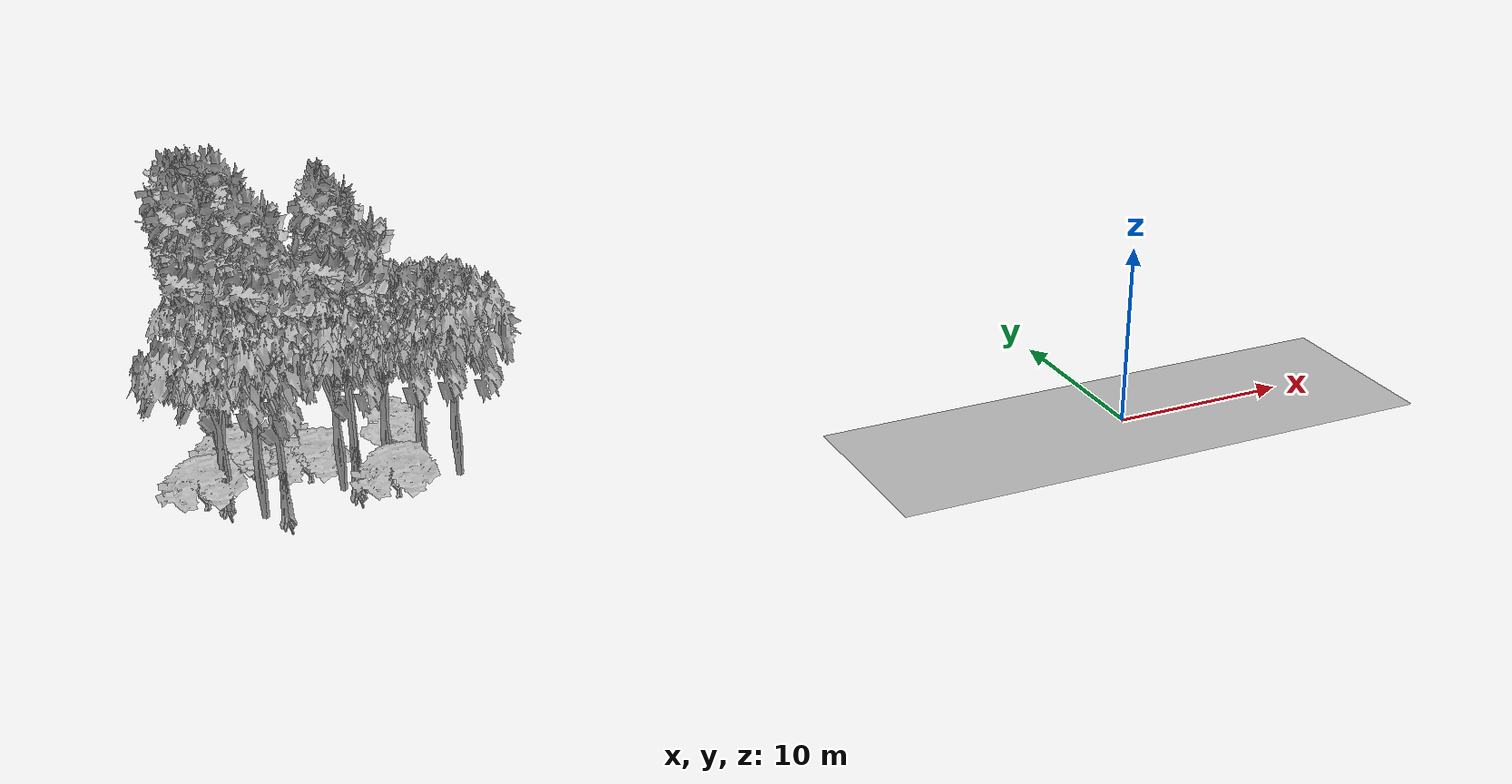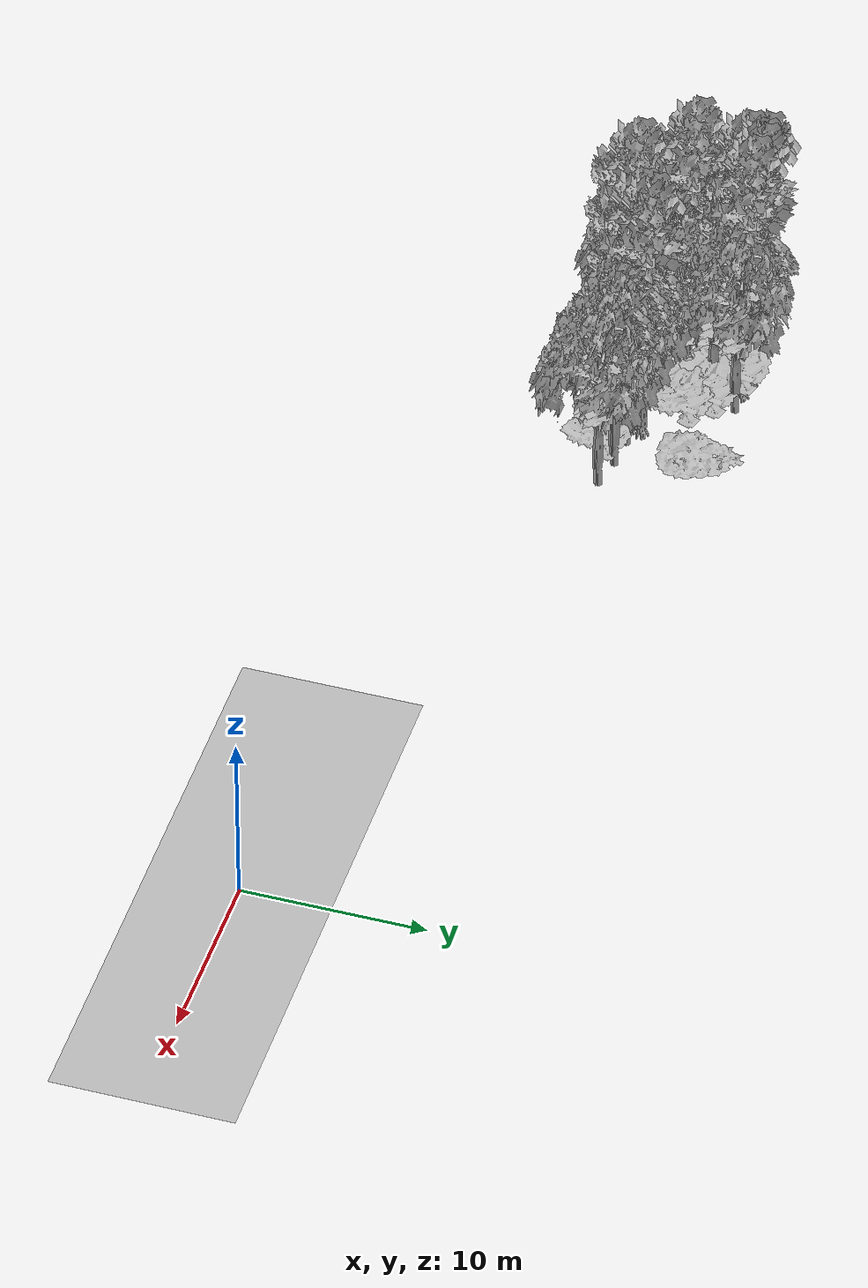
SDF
<sdf version="1.7">
 <world name="default">
  <model name="ground_plane">
   <static>1</static>
   <link name="link">
    <collision name="collision">
     <pose>-50 0 0 0 -0 0</pose>
     <geometry><plane><normal>0 0 1</normal><size>100 100</size></plane></geometry>
     <surface><contact><ode><min_depth>0.01</min_depth><max_vel>0</max_vel></ode></contact></surface>
    </collision>
    <visual name="grass">
     <cast_shadows>0</cast_shadows>
     <geometry>
      <mesh>
       <scale>0.5814285714285714 0.18142857142857144 0.1</scale>
       <uri>file://grass_plane/meshes/grass_plane.dae</uri>
      </mesh>
     </geometry>
    </visual>
   </link>
  </model>
  <model name="Tree 36">
   <static>1</static>
   <pose>-45.2390596079269 13.255023697509191 0 1.57079 -0 0</pose>
   <link name="link">
    <collision name="collision">
     <geometry><mesh><scale>3 2 3</scale><uri>model://tree_3/meshes/tree_3.obj</uri></mesh></geometry>
    </collision>
    <visual name="visual">
     <geometry><mesh><scale>3 2 3</scale><uri>model://tree_3/meshes/tree_3.obj</uri></mesh></geometry>
    </visual>
   </link>
  </model>
  <model name="Tree 42">
   <static>1</static>
   <pose>-39.72523359001799 9.642496001918936 0 1.57079 -0 0</pose>
   <link name="link">
    <collision name="collision">
     <geometry><mesh><scale>3.5 5 3.5</scale><uri>model://tree_9/meshes/tree_9.obj</uri></mesh></geometry>
    </collision>
    <visual name="visual">
     <geometry><mesh><scale>3.5 5 3.5</scale><uri>model://tree_9/meshes/tree_9.obj</uri></mesh></geometry>
    </visual>
   </link>
  </model>
  <model name="Tree 45">
   <static>1</static>
   <pose>-46.27526785173184 10.243982726665738 0 1.57079 -0 0</pose>
   <link name="link">
    <collision name="collision">
     <geometry><mesh><scale>3.5 5 3.5</scale><uri>model://tree_9/meshes/tree_9.obj</uri></mesh></geometry>
    </collision>
    <visual name="visual">
     <geometry><mesh><scale>3.5 5 3.5</scale><uri>model://tree_9/meshes/tree_9.obj</uri></mesh></geometry>
    </visual>
   </link>
  </model>
  <model name="Tree 64">
   <static>1</static>
   <pose>-47.21805577059944 10.272237823966268 0 1.57079 -0 0</pose>
   <link name="link">
    <collision name="collision">
     <geometry><mesh><scale>3 2 3</scale><uri>model://tree_3/meshes/tree_3.obj</uri></mesh></geometry>
    </collision>
    <visual name="visual">
     <geometry><mesh><scale>3 2 3</scale><uri>model://tree_3/meshes/tree_3.obj</uri></mesh></geometry>
    </visual>
   </link>
  </model>
  <model name="Tree 68">
   <static>1</static>
   <pose>-38.121902634278264 7.676888377031833 0 1.57079 -0 0</pose>
   <link name="link">
    <collision name="collision">
     <geometry><mesh><scale>3 2 3</scale><uri>model://tree_3/meshes/tree_3.obj</uri></mesh></geometry>
    </collision>
    <visual name="visual">
     <geometry><mesh><scale>3 2 3</scale><uri>model://tree_3/meshes/tree_3.obj</uri></mesh></geometry>
    </visual>
   </link>
  </model>
  <model name="Tree 81">
   <static>1</static>
   <pose>-38.25816886911259 9.220972555237225 0 1.57079 -0 0</pose>
   <link name="link">
    <collision name="collision">
     <geometry><mesh><scale>3.5 5 3.5</scale><uri>model://tree_2/meshes/tree_2.obj</uri></mesh></geometry>
    </collision>
    <visual name="visual">
     <geometry><mesh><scale>3.5 5 3.5</scale><uri>model://tree_2/meshes/tree_2.obj</uri></mesh></geometry>
    </visual>
   </link>
  </model>
  <model name="Tree 92">
   <static>1</static>
   <pose>-45.26455888689323 14.104737812064709 0 1.57079 -0 0</pose>
   <link name="link">
    <collision name="collision">
     <geometry><mesh><scale>3.5 5 3.5</scale><uri>model://tree_9/meshes/tree_9.obj</uri></mesh></geometry>
    </collision>
    <visual name="visual">
     <geometry><mesh><scale>3.5 5 3.5</scale><uri>model://tree_9/meshes/tree_9.obj</uri></mesh></geometry>
    </visual>
   </link>
  </model>
  <model name="Tree 155">
   <static>1</static>
   <pose>-34.75682544509168 8.67520336807058 0 1.57079 -0 0</pose>
   <link name="link">
    <collision name="collision">
     <geometry><mesh><scale>3.5 5 3.5</scale><uri>model://tree_2/meshes/tree_2.obj</uri></mesh></geometry>
    </collision>
    <visual name="visual">
     <geometry><mesh><scale>3.5 5 3.5</scale><uri>model://tree_2/meshes/tree_2.obj</uri></mesh></geometry>
    </visual>
   </link>
  </model>
  <model name="Tree 189">
   <static>1</static>
   <pose>-46.006176674218864 13.025033509867566 0 1.57079 -0 0</pose>
   <link name="link">
    <collision name="collision">
     <geometry><mesh><scale>3.5 5 3.5</scale><uri>model://tree_9/meshes/tree_9.obj</uri></mesh></geometry>
    </collision>
    <visual name="visual">
     <geometry><mesh><scale>3.5 5 3.5</scale><uri>model://tree_9/meshes/tree_9.obj</uri></mesh></geometry>
    </visual>
   </link>
  </model>
  <model name="Tree 233">
   <static>1</static>
   <pose>-42.98111186182675 12.156059212821091 0 1.57079 -0 0</pose>
   <link name="link">
    <collision name="collision">
     <geometry><mesh><scale>3 2 3</scale><uri>model://tree_3/meshes/tree_3.obj</uri></mesh></geometry>
    </collision>
    <visual name="visual">
     <geometry><mesh><scale>3 2 3</scale><uri>model://tree_3/meshes/tree_3.obj</uri></mesh></geometry>
    </visual>
   </link>
  </model>
  <model name="Tree 247">
   <static>1</static>
   <pose>-40.61025666373962 9.462722215415845 0 1.57079 -0 0</pose>
   <link name="link">
    <collision name="collision">
     <geometry><mesh><scale>3.5 5 3.5</scale><uri>model://tree_2/meshes/tree_2.obj</uri></mesh></geometry>
    </collision>
    <visual name="visual">
     <geometry><mesh><scale>3.5 5 3.5</scale><uri>model://tree_2/meshes/tree_2.obj</uri></mesh></geometry>
    </visual>
   </link>
  </model>
  <model name="Tree 266">
   <static>1</static>
   <pose>-46.28234694381248 9.64834806574747 0 1.57079 -0 0</pose>
   <link name="link">
    <collision name="collision">
     <geometry><mesh><scale>3.5 5 3.5</scale><uri>model://tree_2/meshes/tree_2.obj</uri></mesh></geometry>
    </collision>
    <visual name="visual">
     <geometry><mesh><scale>3.5 5 3.5</scale><uri>model://tree_2/meshes/tree_2.obj</uri></mesh></geometry>
    </visual>
   </link>
  </model>
  <model name="Tree 306">
   <static>1</static>
   <pose>-37.115825446476336 13.371936014853723 0 1.57079 -0 0</pose>
   <link name="link">
    <collision name="collision">
     <geometry><mesh><scale>4 2.5 4</scale><uri>model://tree_1/meshes/tree_1.obj</uri></mesh></geometry>
    </collision>
    <visual name="visual">
     <geometry><mesh><scale>4 2.5 4</scale><uri>model://tree_1/meshes/tree_1.obj</uri></mesh></geometry>
    </visual>
   </link>
  </model>
  <model name="Tree 308">
   <static>1</static>
   <pose>-45.644946485708665 13.952794131892023 0 1.57079 -0 0</pose>
   <link name="link">
    <collision name="collision">
     <geometry><mesh><scale>3.5 5 3.5</scale><uri>model://tree_9/meshes/tree_9.obj</uri></mesh></geometry>
    </collision>
    <visual name="visual">
     <geometry><mesh><scale>3.5 5 3.5</scale><uri>model://tree_9/meshes/tree_9.obj</uri></mesh></geometry>
    </visual>
   </link>
  </model>
  <model name="Tree 337">
   <static>1</static>
   <pose>-43.730363644544276 7.760428405871561 0 1.57079 -0 0</pose>
   <link name="link">
    <collision name="collision">
     <geometry><mesh><scale>3.5 5 3.5</scale><uri>model://tree_9/meshes/tree_9.obj</uri></mesh></geometry>
    </collision>
    <visual name="visual">
     <geometry><mesh><scale>3.5 5 3.5</scale><uri>model://tree_9/meshes/tree_9.obj</uri></mesh></geometry>
    </visual>
   </link>
  </model>
  <model name="Tree 364">
   <static>1</static>
   <pose>-39.90846657300433 8.999869007577704 0 1.57079 -0 0</pose>
   <link name="link">
    <collision name="collision">
     <geometry><mesh><scale>3.5 5 3.5</scale><uri>model://tree_9/meshes/tree_9.obj</uri></mesh></geometry>
    </collision>
    <visual name="visual">
     <geometry><mesh><scale>3.5 5 3.5</scale><uri>model://tree_9/meshes/tree_9.obj</uri></mesh></geometry>
    </visual>
   </link>
  </model>
  <model name="Tree 405">
   <static>1</static>
   <pose>-41.870647689909234 11.069653408361336 0 1.57079 -0 0</pose>
   <link name="link">
    <collision name="collision">
     <geometry><mesh><scale>3 2 3</scale><uri>model://tree_3/meshes/tree_3.obj</uri></mesh></geometry>
    </collision>
    <visual name="visual">
     <geometry><mesh><scale>3 2 3</scale><uri>model://tree_3/meshes/tree_3.obj</uri></mesh></geometry>
    </visual>
   </link>
  </model>
  <model name="Tree 431">
   <static>1</static>
   <pose>-44.81041470847575 8.174947445487941 0 1.57079 -0 0</pose>
   <link name="link">
    <collision name="collision">
     <geometry><mesh><scale>3.5 5 3.5</scale><uri>model://tree_2/meshes/tree_2.obj</uri></mesh></geometry>
    </collision>
    <visual name="visual">
     <geometry><mesh><scale>3.5 5 3.5</scale><uri>model://tree_2/meshes/tree_2.obj</uri></mesh></geometry>
    </visual>
   </link>
  </model>
  <model name="Tree 447">
   <static>1</static>
   <pose>-43.25657019096954 12.551036587244251 0 1.57079 -0 0</pose>
   <link name="link">
    <collision name="collision">
     <geometry><mesh><scale>3.5 5 3.5</scale><uri>model://tree_2/meshes/tree_2.obj</uri></mesh></geometry>
    </collision>
    <visual name="visual">
     <geometry><mesh><scale>3.5 5 3.5</scale><uri>model://tree_2/meshes/tree_2.obj</uri></mesh></geometry>
    </visual>
   </link>
  </model>
  <model name="Tree 506">
   <static>1</static>
   <pose>-36.507106262623495 9.052999969385727 0 1.57079 -0 0</pose>
   <link name="link">
    <collision name="collision">
     <geometry><mesh><scale>3.5 5 3.5</scale><uri>model://tree_2/meshes/tree_2.obj</uri></mesh></geometry>
    </collision>
    <visual name="visual">
     <geometry><mesh><scale>3.5 5 3.5</scale><uri>model://tree_2/meshes/tree_2.obj</uri></mesh></geometry>
    </visual>
   </link>
  </model>
  <model name="Tree 512">
   <static>1</static>
   <pose>-44.146647148850406 13.913213432149341 0 1.57079 -0 0</pose>
   <link name="link">
    <collision name="collision">
     <geometry><mesh><scale>3.5 5 3.5</scale><uri>model://tree_9/meshes/tree_9.obj</uri></mesh></geometry>
    </collision>
    <visual name="visual">
     <geometry><mesh><scale>3.5 5 3.5</scale><uri>model://tree_9/meshes/tree_9.obj</uri></mesh></geometry>
    </visual>
   </link>
  </model>
  <model name="Tree 516">
   <static>1</static>
   <pose>-46.19760627486676 14.048049258399988 0 1.57079 -0 0</pose>
   <link name="link">
    <collision name="collision">
     <geometry><mesh><scale>3.5 5 3.5</scale><uri>model://tree_9/meshes/tree_9.obj</uri></mesh></geometry>
    </collision>
    <visual name="visual">
     <geometry><mesh><scale>3.5 5 3.5</scale><uri>model://tree_9/meshes/tree_9.obj</uri></mesh></geometry>
    </visual>
   </link>
  </model>
  <model name="Tree 535">
   <static>1</static>
   <pose>-42.407277026762806 14.026457798169709 0 1.57079 -0 0</pose>
   <link name="link">
    <collision name="collision">
     <geometry><mesh><scale>3.5 5 3.5</scale><uri>model://tree_2/meshes/tree_2.obj</uri></mesh></geometry>
    </collision>
    <visual name="visual">
     <geometry><mesh><scale>3.5 5 3.5</scale><uri>model://tree_2/meshes/tree_2.obj</uri></mesh></geometry>
    </visual>
   </link>
  </model>
 </world>
</sdf>
